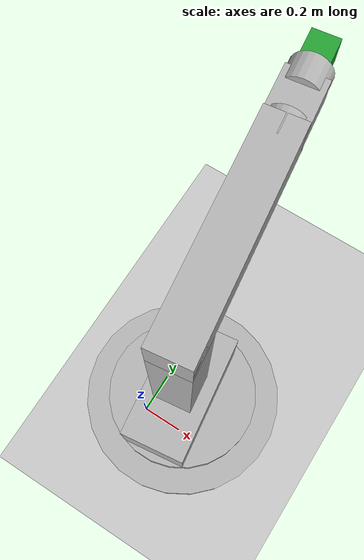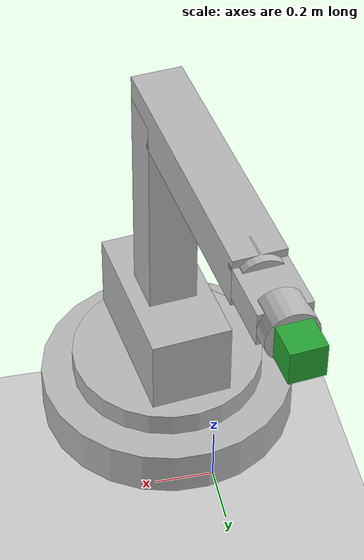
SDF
<sdf version="1.6">
 <world name="default">
  <light name="sun" type="directional">
   <pose>0 0 10 0 -0 0</pose>
   <diffuse>0.8 0.8 0.8 1</diffuse>
   <specular>0.2 0.2 0.2 1</specular>
   <attenuation>
    <range>1000</range>
    <constant>0.9</constant>
    <linear>0.01</linear>
    <quadratic>0.001</quadratic>
   </attenuation>
   <direction>-0.5 0.1 -0.9</direction>
  </light>
  <model name="ground_plane">
   <static>1</static>
   <link name="link">
    <collision name="collision">
     <geometry><plane><normal>0 0 1</normal><size>100 100</size></plane></geometry>
     <surface>
      <contact><collide_bitmask>65535</collide_bitmask></contact>
      <friction><ode><mu>100</mu><mu2>50</mu2></ode></friction>
     </surface>
    </collision>
    <visual name="visual">
     <cast_shadows>0</cast_shadows>
     <geometry><plane><normal>0 0 1</normal><size>100 100</size></plane></geometry>
     <material>
      <script><uri>file://media/materials/scripts/gazebo.material</uri><name>Gazebo/Grey</name></script>
     </material>
    </visual>
   </link>
  </model>
  <gravity>0 0 -9.8</gravity>
  <magnetic_field>6e-06 2.3e-05 -4.2e-05</magnetic_field>
  <atmosphere type="adiabatic"/>
  <physics name="default_physics" default="0" type="ode">
   <max_step_size>0.001</max_step_size>
   <real_time_factor>1</real_time_factor>
   <real_time_update_rate>1000</real_time_update_rate>
  </physics>
  <scene><ambient>0.4 0.4 0.4 1</ambient><background>0.7 0.7 0.7 1</background><shadows>1</shadows></scene>
  <audio><device>default</device></audio>
  <spherical_coordinates>
   <surface_model>EARTH_WGS84</surface_model>
   <latitude_deg>0</latitude_deg>
   <longitude_deg>0</longitude_deg>
   <elevation>0</elevation>
   <heading_deg>0</heading_deg>
  </spherical_coordinates>
  <model name="myoboat">
   <link name="base_cylinder1">
    <inertial>
     <pose>0 0 0.075249 0 -0 0</pose>
     <mass>301</mass>
     <inertia><ixx>21.4889</ixx><ixy>0</ixy><ixz>0</ixz><iyy>20.0641</iyy><iyz>0</iyz><izz>20.026</izz></inertia>
    </inertial>
    <collision name="base_cylinder1_collision"><geometry><box><size>1 1.5 1</size></box></geometry></collision>
    <collision name="base_cylinder1_fixed_joint_lump__base_cylinder2_collision_1">
     <pose>0 0 0.15 0 -0 0</pose>
     <geometry><box><size>1 1.5 1</size></box></geometry>
    </collision>
    <visual name="base_cylinder1_visual">
     <pose>0 0 0.075 0 -0 0</pose>
     <geometry><cylinder><length>0.15</length><radius>0.4</radius></cylinder></geometry>
    </visual>
    <visual name="base_cylinder1_fixed_joint_lump__base_cylinder2_visual_1">
     <pose>0 0 0.15 0 -0 0</pose>
     <geometry><cylinder><length>0.15</length><radius>0.3</radius></cylinder></geometry>
    </visual>
   </link>
   <link name="base_box1">
    <pose>0 -0.02 0.35 0 -0 0</pose>
    <inertial>
     <mass>15</mass>
     <inertia>
      <ixx>0.0741667</ixx>
      <ixy>0</ixy>
      <ixz>0</ixz>
      <iyy>0.0585417</iyy>
      <iyz>0</iyz>
      <izz>0.0260417</izz>
     </inertia>
    </inertial>
    <collision name="base_box1_collision"><geometry><box><size>1 1.5 1</size></box></geometry></collision>
    <visual name="base_box1_visual"><geometry><box><size>0.25 0.5 0.25</size></box></geometry></visual>
   </link>
   <joint name="joint2" type="revolute">
    <child>base_box1</child>
    <parent>base_cylinder1</parent>
    <axis>
     <xyz>0 0 1</xyz>
     <limit><lower>-1.57</lower><upper>1.57</upper><effort>15</effort><velocity>15</velocity></limit>
     <dynamics><spring_reference>0</spring_reference><spring_stiffness>0</spring_stiffness></dynamics>
     <use_parent_model_frame>1</use_parent_model_frame>
    </axis>
   </joint>
   <link name="base_box2">
    <pose>0 -0.02 0.35 0 -0 0</pose>
    <inertial>
     <pose>0 0 0.4 0 -0 0</pose>
     <mass>10</mass>
     <inertia>
      <ixx>0.0741667</ixx>
      <ixy>0</ixy>
      <ixz>0</ixz>
      <iyy>0.0585417</iyy>
      <iyz>0</iyz>
      <izz>0.0260417</izz>
     </inertia>
    </inertial>
    <collision name="base_box2_collision"><geometry><box><size>1 1.5 1</size></box></geometry></collision>
    <visual name="base_box2_visual">
     <pose>0 0 0.4 0 -0 0</pose>
     <geometry><box><size>0.15 0.15 0.8</size></box></geometry>
    </visual>
   </link>
   <joint name="joint3" type="revolute">
    <child>base_box2</child>
    <parent>base_box1</parent>
    <axis>
     <xyz>1 0 0</xyz>
     <limit><lower>-1.57</lower><upper>1.57</upper><effort>50</effort><velocity>50</velocity></limit>
     <dynamics><spring_reference>0</spring_reference><spring_stiffness>0</spring_stiffness></dynamics>
     <use_parent_model_frame>1</use_parent_model_frame>
    </axis>
   </joint>
   <link name="base_box3">
    <pose>0 -0.02 1.15 0 -0 0</pose>
    <inertial>
     <pose>0 0.325 0 1.57 -0 0</pose>
     <mass>1</mass>
     <inertia>
      <ixx>0.0741667</ixx>
      <ixy>0</ixy>
      <ixz>0</ixz>
      <iyy>0.0585417</iyy>
      <iyz>0</iyz>
      <izz>0.0260417</izz>
     </inertia>
    </inertial>
    <collision name="base_box3_collision"><geometry><box><size>1 1.5 1</size></box></geometry></collision>
    <visual name="base_box3_visual">
     <pose>0 0.325 0 1.57 -0 0</pose>
     <geometry><box><size>0.15 0.15 0.8</size></box></geometry>
    </visual>
   </link>
   <joint name="joint4" type="revolute">
    <child>base_box3</child>
    <parent>base_box2</parent>
    <axis>
     <xyz>1 0 0</xyz>
     <limit><lower>-1.57</lower><upper>1.57</upper><effort>100</effort><velocity>100</velocity></limit>
     <dynamics><spring_reference>0</spring_reference><spring_stiffness>0</spring_stiffness></dynamics>
     <use_parent_model_frame>1</use_parent_model_frame>
    </axis>
   </joint>
   <link name="base_cylinder3">
    <pose>0 0.68 1.15 0 -0 0</pose>
    <inertial>
     <pose>0 0 0 1.57 -0 0</pose>
     <mass>1</mass>
     <inertia>
      <ixx>0.0741667</ixx>
      <ixy>0</ixy>
      <ixz>0</ixz>
      <iyy>0.0585417</iyy>
      <iyz>0</iyz>
      <izz>0.0260417</izz>
     </inertia>
    </inertial>
    <collision name="base_cylinder3_collision"><geometry><box><size>1 1.5 1</size></box></geometry></collision>
    <visual name="base_cylinder3_visual">
     <pose>0 0 0 1.57 -0 0</pose>
     <geometry><cylinder><length>0.1</length><radius>0.075</radius></cylinder></geometry>
    </visual>
   </link>
   <joint name="joint5" type="revolute">
    <child>base_cylinder3</child>
    <parent>base_box3</parent>
    <axis>
     <xyz>0 1 0</xyz>
     <limit><lower>-1.57</lower><upper>1.57</upper><effort>100</effort><velocity>50</velocity></limit>
     <dynamics><spring_reference>0</spring_reference><spring_stiffness>0</spring_stiffness></dynamics>
     <use_parent_model_frame>1</use_parent_model_frame>
    </axis>
   </joint>
   <link name="base_box4">
    <pose>0 0.68 1.15 0 -0 0</pose>
    <inertial>
     <pose>0 0.15 0 0 -0 0</pose>
     <mass>2</mass>
     <inertia>
      <ixx>0.153333</ixx>
      <ixy>0</ixy>
      <ixz>0</ixz>
      <iyy>0.0845834</iyy>
      <iyz>2.58806e-05</iyz>
      <izz>0.0895833</izz>
     </inertia>
    </inertial>
    <collision name="base_box4_collision"><geometry><box><size>1 1.5 1</size></box></geometry></collision>
    <collision name="base_box4_fixed_joint_lump__base_cylinder4_collision_1">
     <geometry><box><size>1 1.5 1</size></box></geometry>
    </collision>
    <visual name="base_box4_visual">
     <pose>0 0.1 0 0 -0 0</pose>
     <geometry><box><size>0.15 0.2 0.1</size></box></geometry>
    </visual>
    <visual name="base_box4_fixed_joint_lump__base_cylinder4_visual_1">
     <pose>0 0.2 0 1.57 -0 0</pose>
     <geometry><cylinder><length>0.1</length><radius>0.075</radius></cylinder></geometry>
    </visual>
   </link>
   <joint name="joint6" type="revolute">
    <child>base_box4</child>
    <parent>base_cylinder3</parent>
    <axis>
     <xyz>1 0 0</xyz>
     <limit><lower>-1.57</lower><upper>1.57</upper><effort>100</effort><velocity>50</velocity></limit>
     <dynamics><spring_reference>0</spring_reference><spring_stiffness>0</spring_stiffness></dynamics>
     <use_parent_model_frame>1</use_parent_model_frame>
    </axis>
   </joint>
   <link name="camera">
    <pose>0 0.98 1.15 0 -0 0</pose>
    <inertial>
     <mass>1</mass>
     <inertia>
      <ixx>0.0741667</ixx>
      <ixy>0</ixy>
      <ixz>0</ixz>
      <iyy>0.0585417</iyy>
      <iyz>0</iyz>
      <izz>0.0260417</izz>
     </inertia>
    </inertial>
    <collision name="camera_collision"><geometry><box><size>1 1.5 1</size></box></geometry></collision>
    <visual name="camera_visual">
     <geometry><box><size>0.1 0.1 0.1</size></box></geometry>
     <material>
      <script><name>Gazebo/Green</name><uri>file://media/materials/scripts/gazebo.material</uri></script>
     </material>
    </visual>
    <sensor name="camera1" type="camera">
     <update_rate>30</update_rate>
     <camera name="head">
      <horizontal_fov>1.39626</horizontal_fov>
      <image><width>800</width><height>800</height><format>R8G8B8</format></image>
      <clip><near>0.02</near><far>300</far></clip>
     </camera>
     <plugin name="camera_controller" filename="libgazebo_ros_camera.so">
      <alwaysOn>1</alwaysOn>
      <updateRate>0.0</updateRate>
      <cameraName>mybot/camera1</cameraName>
      <imageTopicName>image_raw</imageTopicName>
      <cameraInfoTopicName>camera_info</cameraInfoTopicName>
      <frameName>camera</frameName>
      <hackBaseline>0.07</hackBaseline>
      <distortionK1>0.0</distortionK1>
      <distortionK2>0.0</distortionK2>
      <distortionK3>0.0</distortionK3>
      <distortionT1>0.0</distortionT1>
      <distortionT2>0.0</distortionT2>
      <robotNamespace>/</robotNamespace>
     </plugin>
    </sensor>
   </link>
   <joint name="camera_joint" type="revolute">
    <child>camera</child>
    <parent>base_box4</parent>
    <axis>
     <xyz>0 0 1</xyz>
     <limit><lower>-1.57</lower><upper>1.57</upper><effort>100</effort><velocity>30</velocity></limit>
     <dynamics><spring_reference>0</spring_reference><spring_stiffness>0</spring_stiffness></dynamics>
     <use_parent_model_frame>1</use_parent_model_frame>
    </axis>
   </joint>
   <static>0</static>
   <plugin name="gazebo_ros_control" filename="libgazebo_ros_control.so">
    <robotNamespace>/MYROBOT</robotNamespace>
    <robotSimType>gazebo_ros_control/DefaultRobotHWSim</robotSimType>
   </plugin>
   <pose>0.17652 0.069864 0.501726 -0.002329 -3.1e-05 0.130434</pose>
  </model>
 </world>
</sdf>
